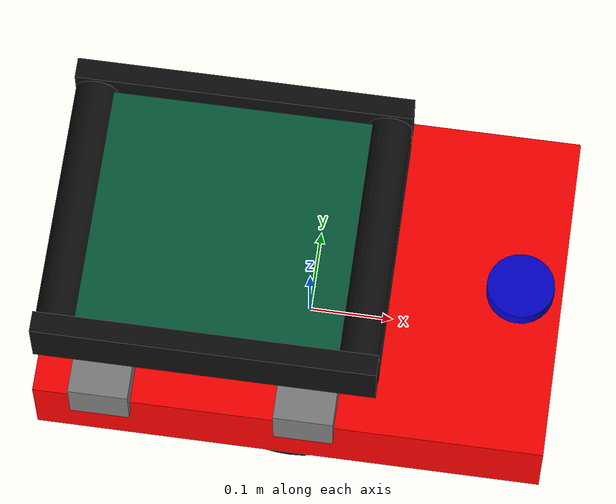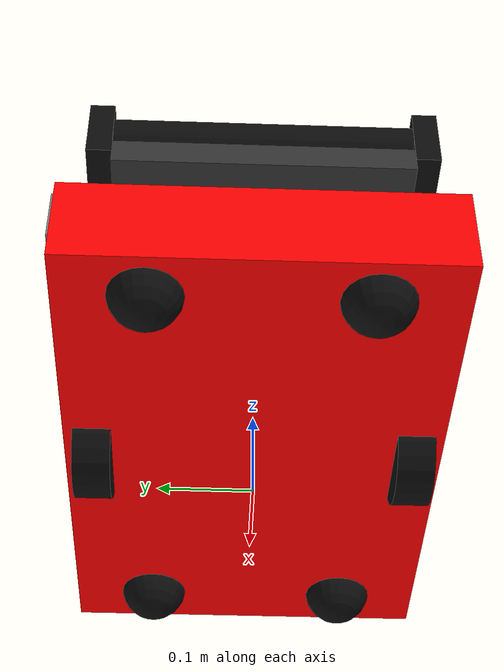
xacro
<?xml version="1.0"?>
<robot xmlns:xacro="http://www.ros.org/wiki/xacro" name="war_robot">

    <!-- Global Properties & Materials -->
    <xacro:include filename="$(find war_description)/urdf/properties.xacro"/>
    <xacro:include filename="$(find war_description)/urdf/materials.xacro"/>

    <!-- Core Chassis & Kinematics -->
    <xacro:include filename="$(find war_description)/urdf/base.xacro"/>
    <xacro:include filename="$(find war_description)/urdf/wheel.xacro"/>
    <xacro:include filename="$(find war_description)/urdf/caster.xacro"/>

    <!-- Payload & Sensors -->
    <xacro:include filename="$(find war_description)/urdf/conveyor.xacro"/>
    <xacro:include filename="$(find war_description)/urdf/lidar.xacro"/>

    <!-- Gazebo Simulation & ros2_control -->
    <xacro:include filename="$(find war_description)/urdf/gazebo.xacro"/>
    <xacro:include filename="$(find war_description)/urdf/ros2_control.xacro"/>

</robot>

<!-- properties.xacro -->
<robot xmlns:xacro="http://www.ros.org/wiki/xacro" name="war_robot">

    <!-- Base Dimensions & Mass -->
    <xacro:property name="base_length" value="0.6"/>
    <xacro:property name="base_width" value="0.4"/>
    <xacro:property name="base_height" value="0.1"/>
    <xacro:property name="base_mass" value="10.0"/>

    <!-- Drive Wheels -->
    <xacro:property name="wheel_radius" value="0.06"/>
    <xacro:property name="wheel_width" value="0.04"/>
    <xacro:property name="wheel_mass" value="2.0"/>

    <!-- 2D LiDAR (realistic sensor mass ~0.2 kg) -->
    <xacro:property name="lidar_radius" value="0.04"/>
    <xacro:property name="lidar_length" value="0.02"/>
    <xacro:property name="lidar_mass" value="0.2"/>

    <!-- Passive Ball Casters -->
    <xacro:property name="caster_radius" value="0.038"/>
    <xacro:property name="caster_mass" value="0.3"/>

</robot>

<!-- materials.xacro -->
<robot xmlns:xacro="http://www.ros.org/wiki/xacro" name="war_robot">

    <material name="Red">
        <color rgba="1.0 0.0 0.0 1.0"/>
    </material>

    <material name="Black">
        <color rgba="0.05 0.05 0.05 1.0"/>
    </material>

    <material name="Blue">
        <color rgba="0.0 0.0 0.8 1.0"/>
    </material>

    <material name="Grey">
        <color rgba="0.5 0.5 0.5 1.0"/>
    </material>

    <material name="DarkGrey">
        <color rgba="0.2 0.2 0.2 1.0"/>
    </material>

    <material name="ConveyorGreen">
        <color rgba="0.02 0.35 0.22 1.0"/>
    </material>

</robot>

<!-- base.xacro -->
<robot xmlns:xacro="http://www.ros.org/wiki/xacro" name="war_robot">

    <!-- BASE FOOTPRINT (Ground projection, Z = 0) -->
    <link name="base_footprint"/>

    <joint name="base_footprint_joint" type="fixed">
        <parent link="base_footprint"/>
        <child link="base_link"/>
        <origin xyz="0 0 0.085" rpy="0 0 0"/>
    </joint>

    <!-- BASE LINK (Chassis Body) -->
    <link name="base_link">
        <visual>
            <origin xyz="0 0 0" rpy="0 0 0"/>
            <geometry>
                <box size="${base_length} ${base_width} ${base_height}"/>
            </geometry>
            <material name="Red"/>
        </visual>

        <collision>
            <origin xyz="0 0 0" rpy="0 0 0"/>
            <geometry>
                <box size="${base_length} ${base_width} ${base_height}"/>
            </geometry>
        </collision>

        <inertial>
            <origin xyz="0 0 0" rpy="0 0 0"/>
            <mass value="${base_mass}"/>
            <inertia
                ixx="${base_mass * (base_width**2 + base_height**2) / 12}"
                ixy="0.0"
                ixz="0.0"
                iyy="${base_mass * (base_length**2 + base_height**2) / 12}"
                iyz="0.0"
                izz="${base_mass * (base_length**2 + base_width**2) / 12}"/>
        </inertial>
    </link>

</robot>

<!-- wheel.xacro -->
<robot xmlns:xacro="http://www.ros.org/wiki/xacro" name="war_robot">

    <!-- LEFT WHEEL (+Y is Left in standard ROS coordinates) -->
    <link name="left_wheel">
        <visual>
            <geometry>
                <cylinder radius="${wheel_radius}" length="${wheel_width}"/>
            </geometry>
            <material name="Black"/>
        </visual>
        <collision>
            <geometry>
                <cylinder radius="${wheel_radius}" length="${wheel_width}"/>
            </geometry>
        </collision>
        <inertial>
            <mass value="${wheel_mass}"/>
            <inertia
                ixx="${wheel_mass * (3 * wheel_radius**2 + wheel_width**2) / 12}"
                ixy="0.0"
                ixz="0.0"
                iyy="${wheel_mass * (3 * wheel_radius**2 + wheel_width**2) / 12}"
                iyz="0.0"
                izz="${(wheel_mass * wheel_radius**2) / 2}"/>
        </inertial>
    </link>

    <joint name="left_wheel_joint" type="continuous">
        <parent link="base_link"/>
        <child link="left_wheel"/>
        <origin xyz="0 0.17 -0.025" rpy="-1.5708 0 0"/>
        <axis xyz="0 0 1"/>
    </joint>

    <!-- RIGHT WHEEL (-Y is Right in standard ROS coordinates) -->
    <link name="right_wheel">
        <visual>
            <geometry>
                <cylinder radius="${wheel_radius}" length="${wheel_width}"/>
            </geometry>
            <material name="Black"/>
        </visual>
        <collision>
            <geometry>
                <cylinder radius="${wheel_radius}" length="${wheel_width}"/>
            </geometry>
        </collision>
        <inertial>
            <mass value="${wheel_mass}"/>
            <inertia
                ixx="${wheel_mass * (3 * wheel_radius**2 + wheel_width**2) / 12}"
                ixy="0.0"
                ixz="0.0"
                iyy="${wheel_mass * (3 * wheel_radius**2 + wheel_width**2) / 12}"
                iyz="0.0"
                izz="${(wheel_mass * wheel_radius**2) / 2}"/>
        </inertial>
    </link>

    <joint name="right_wheel_joint" type="continuous">
        <parent link="base_link"/>
        <child link="right_wheel"/>
        <origin xyz="0 -0.17 -0.025" rpy="-1.5708 0 0"/>
        <axis xyz="0 0 1"/>
    </joint>

</robot>

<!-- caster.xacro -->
<robot xmlns:xacro="http://www.ros.org/wiki/xacro" name="war_robot">

    <!-- FRONT LEFT CASTER WHEEL -->
    <link name="front_left_caster_wheel">
        <visual>
            <geometry>
                <sphere radius="${caster_radius}"/>
            </geometry>
            <material name="Black"/>
        </visual>
        <collision>
            <geometry>
                <sphere radius="${caster_radius}"/>
            </geometry>
        </collision>
        <inertial>
            <mass value="${caster_mass}"/>
            <inertia
                ixx="${2 * caster_mass * caster_radius**2 / 5}" ixy="0" ixz="0"
                iyy="${2 * caster_mass * caster_radius**2 / 5}" iyz="0"
                izz="${2 * caster_mass * caster_radius**2 / 5}"/>
        </inertial>
    </link>

    <joint name="front_left_caster_wheel_joint" type="fixed">
        <parent link="base_link"/>
        <child link="front_left_caster_wheel"/>
        <origin xyz="0.25 0.11 -0.045" rpy="0 0 0"/>
    </joint>

    <!-- FRONT RIGHT CASTER WHEEL -->
    <link name="front_right_caster_wheel">
        <visual>
            <geometry>
                <sphere radius="${caster_radius}"/>
            </geometry>
            <material name="Black"/>
        </visual>
        <collision>
            <geometry>
                <sphere radius="${caster_radius}"/>
            </geometry>
        </collision>
        <inertial>
            <mass value="${caster_mass}"/>
            <inertia
                ixx="${2 * caster_mass * caster_radius**2 / 5}" ixy="0" ixz="0"
                iyy="${2 * caster_mass * caster_radius**2 / 5}" iyz="0"
                izz="${2 * caster_mass * caster_radius**2 / 5}"/>
        </inertial>
    </link>

    <joint name="front_right_caster_wheel_joint" type="fixed">
        <parent link="base_link"/>
        <child link="front_right_caster_wheel"/>
        <origin xyz="0.25 -0.11 -0.045" rpy="0 0 0"/>
    </joint>

    <!-- REAR LEFT CASTER WHEEL -->
    <link name="rear_left_caster_wheel">
        <visual>
            <geometry>
                <sphere radius="${caster_radius}"/>
            </geometry>
            <material name="Black"/>
        </visual>
        <collision>
            <geometry>
                <sphere radius="${caster_radius}"/>
            </geometry>
        </collision>
        <inertial>
            <mass value="${caster_mass}"/>
            <inertia
                ixx="${2 * caster_mass * caster_radius**2 / 5}" ixy="0" ixz="0"
                iyy="${2 * caster_mass * caster_radius**2 / 5}" iyz="0"
                izz="${2 * caster_mass * caster_radius**2 / 5}"/>
        </inertial>
    </link>

    <joint name="rear_left_caster_wheel_joint" type="fixed">
        <parent link="base_link"/>
        <child link="rear_left_caster_wheel"/>
        <origin xyz="-0.25 0.11 -0.045" rpy="0 0 0"/>
    </joint>

    <!-- REAR RIGHT CASTER WHEEL -->
    <link name="rear_right_caster_wheel">
        <visual>
            <geometry>
                <sphere radius="${caster_radius}"/>
            </geometry>
            <material name="Black"/>
        </visual>
        <collision>
            <geometry>
                <sphere radius="${caster_radius}"/>
            </geometry>
        </collision>
        <inertial>
            <mass value="${caster_mass}"/>
            <inertia
                ixx="${2 * caster_mass * caster_radius**2 / 5}" ixy="0" ixz="0"
                iyy="${2 * caster_mass * caster_radius**2 / 5}" iyz="0"
                izz="${2 * caster_mass * caster_radius**2 / 5}"/>
        </inertial>
    </link>

    <joint name="rear_right_caster_wheel_joint" type="fixed">
        <parent link="base_link"/>
        <child link="rear_right_caster_wheel"/>
        <origin xyz="-0.25 -0.11 -0.045" rpy="0 0 0"/>
    </joint>

</robot>

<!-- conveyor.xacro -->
<robot xmlns:xacro="http://www.ros.org/wiki/xacro" name="war_robot">

    <!-- Conveyor Dimensions -->
    <xacro:property name="conveyor_length" value="0.40"/>
    <xacro:property name="conveyor_width" value="0.30"/>
    <xacro:property name="conveyor_thickness" value="0.03"/>
    <xacro:property name="conveyor_z" value="0.10"/>

    <!-- Roller Dimensions -->
    <xacro:property name="roller_radius" value="0.025"/>
    <xacro:property name="roller_length" value="${conveyor_width}"/>

    <!-- Guard Rails -->
    <xacro:property name="frame_thickness" value="0.025"/>
    <xacro:property name="frame_height" value="0.07"/>

    <!-- Motor Dimensions -->
    <xacro:property name="motor_length" value="0.07"/>
    <xacro:property name="motor_width" value="0.06"/>
    <xacro:property name="motor_height" value="0.06"/>

    <!-- MAIN CONVEYOR BED FRAME -->
    <link name="conveyor_frame">
        <visual>
            <origin xyz="0 0 0" rpy="0 0 0"/>
            <geometry>
                <box size="${conveyor_length} ${conveyor_width} ${conveyor_thickness}"/>
            </geometry>
            <material name="DarkGrey"/>
        </visual>
        <collision>
            <origin xyz="0 0 0" rpy="0 0 0"/>
            <geometry>
                <box size="${conveyor_length} ${conveyor_width} ${conveyor_thickness}"/>
            </geometry>
        </collision>
        <inertial>
            <origin xyz="0 0 0" rpy="0 0 0"/>
            <mass value="2.0"/>
            <inertia ixx="0.01" ixy="0" ixz="0" iyy="0.01" iyz="0" izz="0.01"/>
        </inertial>
    </link>

    <joint name="conveyor_frame_joint" type="fixed">
        <parent link="base_link"/>
        <child link="conveyor_frame"/>
        <origin xyz="-0.10 0 ${conveyor_z}" rpy="0 0 0"/>
    </joint>

    <!-- FRONT ROLLER -->
    <link name="front_conveyor_roller">
        <visual>
            <origin xyz="0 0 0" rpy="-1.5708 0 0"/>
            <geometry>
                <cylinder radius="${roller_radius}" length="${roller_length}"/>
            </geometry>
            <material name="Black"/>
        </visual>
        <collision>
            <origin xyz="0 0 0" rpy="-1.5708 0 0"/>
            <geometry>
                <cylinder radius="${roller_radius}" length="${roller_length}"/>
            </geometry>
        </collision>
        <inertial>
            <origin xyz="0 0 0" rpy="0 0 0"/>
            <mass value="0.3"/>
            <inertia ixx="0.0001" ixy="0" ixz="0" iyy="0.0001" iyz="0" izz="0.0001"/>
        </inertial>
    </link>

    <joint name="front_conveyor_roller_joint" type="continuous">
        <parent link="conveyor_frame"/>
        <child link="front_conveyor_roller"/>
        <origin xyz="${conveyor_length/2 - roller_radius} 0 ${conveyor_thickness/2 + roller_radius}" rpy="0 0 0"/>
        <axis xyz="0 1 0"/>
    </joint>

    <!-- REAR ROLLER -->
    <link name="rear_conveyor_roller">
        <visual>
            <origin xyz="0 0 0" rpy="-1.5708 0 0"/>
            <geometry>
                <cylinder radius="${roller_radius}" length="${roller_length}"/>
            </geometry>
            <material name="Black"/>
        </visual>
        <collision>
            <origin xyz="0 0 0" rpy="-1.5708 0 0"/>
            <geometry>
                <cylinder radius="${roller_radius}" length="${roller_length}"/>
            </geometry>
        </collision>
        <inertial>
            <origin xyz="0 0 0" rpy="0 0 0"/>
            <mass value="0.3"/>
            <inertia ixx="0.0001" ixy="0" ixz="0" iyy="0.0001" iyz="0" izz="0.0001"/>
        </inertial>
    </link>

    <joint name="rear_conveyor_roller_joint" type="continuous">
        <parent link="conveyor_frame"/>
        <child link="rear_conveyor_roller"/>
        <origin xyz="${-conveyor_length/2 + roller_radius} 0 ${conveyor_thickness/2 + roller_radius}" rpy="0 0 0"/>
        <axis xyz="0 1 0"/>
    </joint>

    <!-- CONVEYOR BELT SURFACE -->
    <link name="conveyor_belt">
        <visual>
            <origin xyz="0 0 ${conveyor_thickness/2 + roller_radius + 0.005}" rpy="0 0 0"/>
            <geometry>
                <box size="${conveyor_length - 0.02} ${conveyor_width - 0.01} 0.015"/>
            </geometry>
            <material name="ConveyorGreen"/>
        </visual>
        <collision>
            <origin xyz="0 0 ${conveyor_thickness/2 + roller_radius + 0.005}" rpy="0 0 0"/>
            <geometry>
                <box size="${conveyor_length - 0.02} ${conveyor_width - 0.01} 0.015"/>
            </geometry>
        </collision>
    </link>

    <joint name="conveyor_belt_joint" type="fixed">
        <parent link="conveyor_frame"/>
        <child link="conveyor_belt"/>
        <origin xyz="0 0 0" rpy="0 0 0"/>
    </joint>

    <!-- LEFT GUARD RAIL -->
    <link name="conveyor_left_support">
        <visual>
            <origin xyz="0 0 0" rpy="0 0 0"/>
            <geometry>
                <box size="${conveyor_length} ${frame_thickness} ${frame_height}"/>
            </geometry>
            <material name="Black"/>
        </visual>
        <collision>
            <origin xyz="0 0 0" rpy="0 0 0"/>
            <geometry>
                <box size="${conveyor_length} ${frame_thickness} ${frame_height}"/>
            </geometry>
        </collision>
        <inertial>
            <origin xyz="0 0 0" rpy="0 0 0"/>
            <mass value="0.5"/>
            <inertia ixx="0.001" ixy="0" ixz="0" iyy="0.001" iyz="0" izz="0.001"/>
        </inertial>
    </link>

    <joint name="conveyor_left_support_joint" type="fixed">
        <parent link="conveyor_frame"/>
        <child link="conveyor_left_support"/>
        <origin xyz="0 ${conveyor_width/2 + frame_thickness/2} ${frame_height/2}" rpy="0 0 0"/>
    </joint>

    <!-- RIGHT GUARD RAIL -->
    <link name="conveyor_right_support">
        <visual>
            <origin xyz="0 0 0" rpy="0 0 0"/>
            <geometry>
                <box size="${conveyor_length} ${frame_thickness} ${frame_height}"/>
            </geometry>
            <material name="Black"/>
        </visual>
        <collision>
            <origin xyz="0 0 0" rpy="0 0 0"/>
            <geometry>
                <box size="${conveyor_length} ${frame_thickness} ${frame_height}"/>
            </geometry>
        </collision>
        <inertial>
            <origin xyz="0 0 0" rpy="0 0 0"/>
            <mass value="0.5"/>
            <inertia ixx="0.001" ixy="0" ixz="0" iyy="0.001" iyz="0" izz="0.001"/>
        </inertial>
    </link>

    <joint name="conveyor_right_support_joint" type="fixed">
        <parent link="conveyor_frame"/>
        <child link="conveyor_right_support"/>
        <origin xyz="0 ${-(conveyor_width/2 + frame_thickness/2)} ${frame_height/2}" rpy="0 0 0"/>
    </joint>

    <!-- MOTOR 1 (FRONT LEFT) -->
    <link name="conveyor_front_left_motor">
        <visual>
            <origin xyz="0 0 0" rpy="0 0 0"/>
            <geometry>
                <box size="${motor_length} ${motor_width} ${motor_height}"/>
            </geometry>
            <material name="Grey"/>
        </visual>
        <collision>
            <origin xyz="0 0 0" rpy="0 0 0"/>
            <geometry>
                <box size="${motor_length} ${motor_width} ${motor_height}"/>
            </geometry>
        </collision>
    </link>

    <joint name="conveyor_front_left_motor_joint" type="fixed">
        <parent link="conveyor_frame"/>
        <child link="conveyor_front_left_motor"/>
        <origin xyz="${conveyor_length/2 - 0.08} ${-(conveyor_width/2 + motor_width/2)} -${motor_height/2 + conveyor_thickness/2}" rpy="0 0 0"/>
    </joint>

    <!-- MOTOR 2 (FRONT RIGHT) -->
    <link name="conveyor_front_right_motor">
        <visual>
            <origin xyz="0 0 0" rpy="0 0 0"/>
            <geometry>
                <box size="${motor_length} ${motor_width} ${motor_height}"/>
            </geometry>
            <material name="Grey"/>
        </visual>
        <collision>
            <origin xyz="0 0 0" rpy="0 0 0"/>
            <geometry>
                <box size="${motor_length} ${motor_width} ${motor_height}"/>
            </geometry>
        </collision>
    </link>

    <joint name="conveyor_front_right_motor_joint" type="fixed">
        <parent link="conveyor_frame"/>
        <child link="conveyor_front_right_motor"/>
        <origin xyz="${conveyor_length/2 - 0.08} ${conveyor_width/2 + motor_width/2} -${motor_height/2 + conveyor_thickness/2}" rpy="0 0 0"/>
    </joint>

    <!-- MOTOR 3 (REAR LEFT) -->
    <link name="conveyor_rear_left_motor">
        <visual>
            <origin xyz="0 0 0" rpy="0 0 0"/>
            <geometry>
                <box size="${motor_length} ${motor_width} ${motor_height}"/>
            </geometry>
            <material name="Grey"/>
        </visual>
        <collision>
            <origin xyz="0 0 0" rpy="0 0 0"/>
            <geometry>
                <box size="${motor_length} ${motor_width} ${motor_height}"/>
            </geometry>
        </collision>
    </link>

    <joint name="conveyor_rear_left_motor_joint" type="fixed">
        <parent link="conveyor_frame"/>
        <child link="conveyor_rear_left_motor"/>
        <origin xyz="${-conveyor_length/2 + 0.08} ${-(conveyor_width/2 + motor_width/2)} -${motor_height/2 + conveyor_thickness/2}" rpy="0 0 0"/>
    </joint>

    <!-- MOTOR 4 (REAR RIGHT) -->
    <link name="conveyor_rear_right_motor">
        <visual>
            <origin xyz="0 0 0" rpy="0 0 0"/>
            <geometry>
                <box size="${motor_length} ${motor_width} ${motor_height}"/>
            </geometry>
            <material name="Grey"/>
        </visual>
        <collision>
            <origin xyz="0 0 0" rpy="0 0 0"/>
            <geometry>
                <box size="${motor_length} ${motor_width} ${motor_height}"/>
            </geometry>
        </collision>
    </link>

    <joint name="conveyor_rear_right_motor_joint" type="fixed">
        <parent link="conveyor_frame"/>
        <child link="conveyor_rear_right_motor"/>
        <origin xyz="${-conveyor_length/2 + 0.08} ${conveyor_width/2 + motor_width/2} -${motor_height/2 + conveyor_thickness/2}" rpy="0 0 0"/>
    </joint>

</robot>

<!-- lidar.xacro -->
<robot xmlns:xacro="http://www.ros.org/wiki/xacro" name="war_robot">

    <link name="lidar_link">
        <visual>
            <origin xyz="0 0 0" rpy="0 0 0"/>
            <geometry>
                <cylinder radius="${lidar_radius}" length="${lidar_length}"/>
            </geometry>
            <material name="Blue"/>
        </visual>

        <collision>
            <origin xyz="0 0 0" rpy="0 0 0"/>
            <geometry>
                <cylinder radius="${lidar_radius}" length="${lidar_length}"/>
            </geometry>
        </collision>

        <inertial>
            <origin xyz="0 0 0" rpy="0 0 0"/>
            <mass value="${lidar_mass}"/>
            <inertia
                ixx="${lidar_mass * (3 * lidar_radius**2 + lidar_length**2) / 12}"
                ixy="0.0"
                ixz="0.0"
                iyy="${lidar_mass * (3 * lidar_radius**2 + lidar_length**2) / 12}"
                iyz="0.0"
                izz="${(lidar_mass * lidar_radius**2) / 2}"/>
        </inertial>
    </link>

    <joint name="lidar_joint" type="fixed">
        <parent link="base_link"/>
        <child link="lidar_link"/>
        <!-- Mounted forward at front bumper edge, top surface of base -->
        <origin xyz="0.25 0 ${base_height/2 + lidar_length/2}" rpy="0 0 0"/>
    </joint>

</robot>
